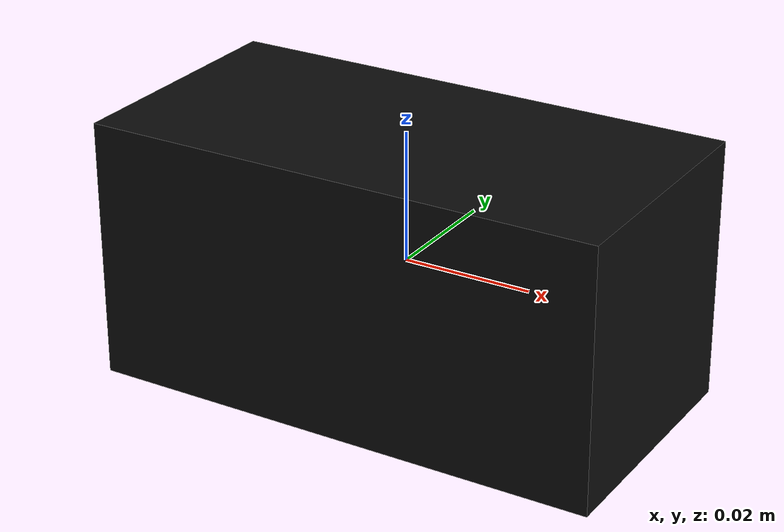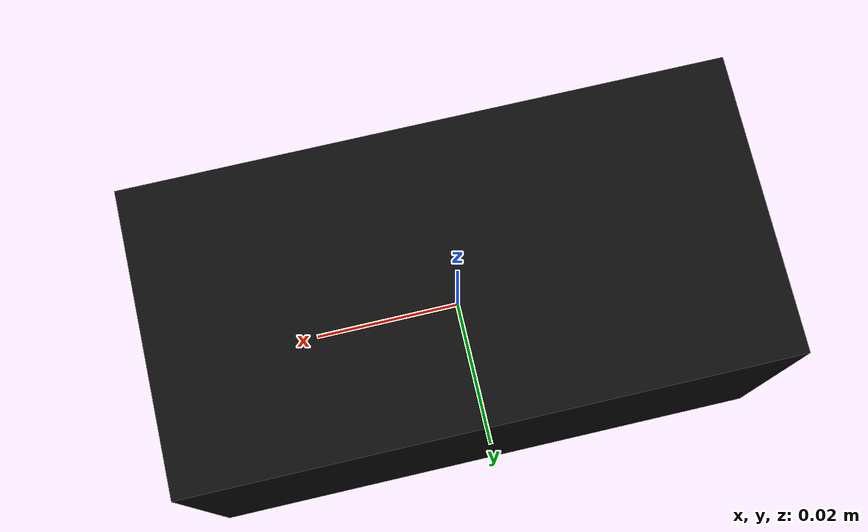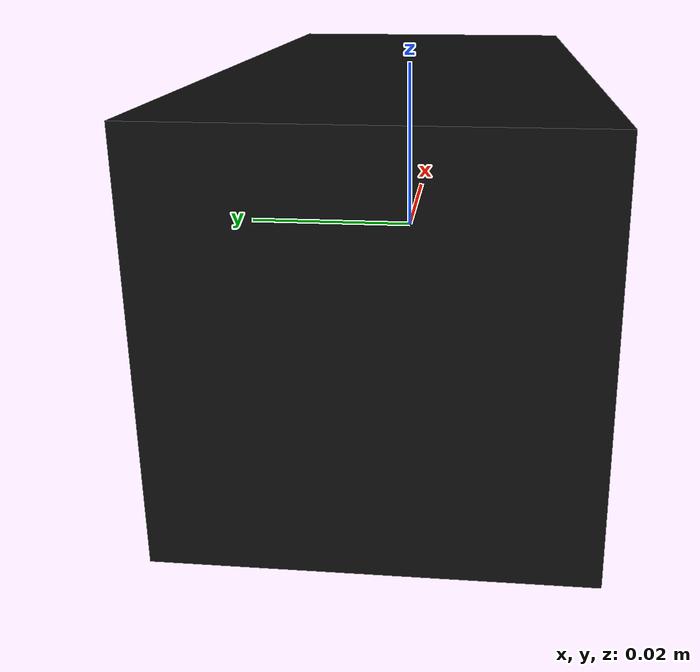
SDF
<?xml version="1.0"?>
<sdf version="1.10">
  <model name="dataset_camera">
    <static>true</static>
    <pose>0 0 0 0 0 0</pose>
    <link name="camera_link">
      <pose>0 0 0 0 0 0</pose>
      <visual name="body_visual">
        <geometry>
          <box>
            <size>0.08 0.04 0.04</size>
          </box>
        </geometry>
        <material>
          <ambient>0.05 0.05 0.05 1</ambient>
          <diffuse>0.05 0.05 0.05 1</diffuse>
          <specular>0.2 0.2 0.2 1</specular>
        </material>
      </visual>
      <sensor name="color_camera" type="camera">
        <pose>0 0 0 0 0 0</pose>
        <visualize>false</visualize>
        <update_rate>5</update_rate>
        <topic>/dataset_camera/color/image_raw</topic>
        <gz_frame_id>dataset_camera</gz_frame_id>
        <camera>
          <camera_info_topic>/dataset_camera/color/camera_info</camera_info_topic>
          <horizontal_fov>1.6</horizontal_fov>
          <image>
            <format>R8G8B8</format>
            <width>640</width>
            <height>360</height>
          </image>
          <clip>
            <near>0.05</near>
            <far>50.0</far>
          </clip>
        </camera>
      </sensor>
    </link>
  </model>
</sdf>
